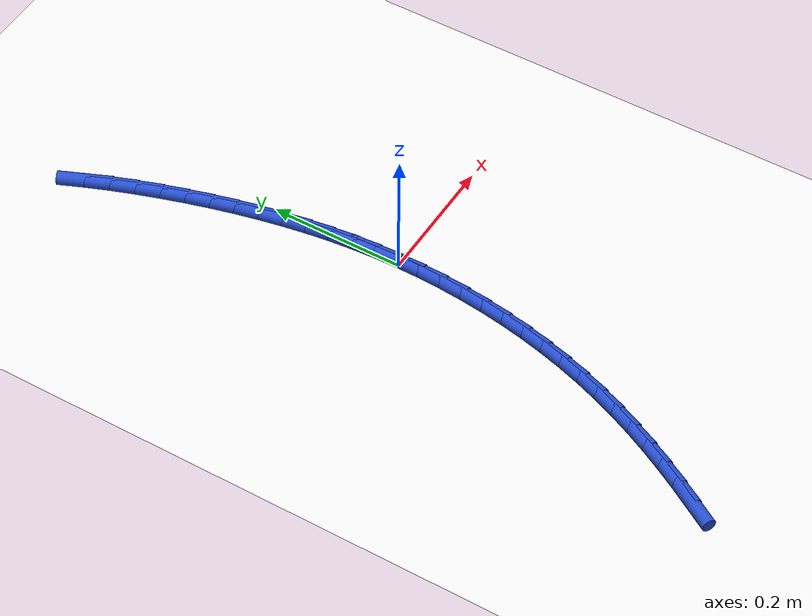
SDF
<sdf version="1.6">
 <world name="default">
  <model name="ground_plane">
   <static>1</static>
   <link name="link">
    <collision name="collision">
     <geometry><plane><normal>0 0 1</normal><size>100 100</size></plane></geometry>
     <surface><friction><ode><mu>100</mu><mu2>50</mu2></ode></friction></surface>
    </collision>
    <visual name="visual">
     <cast_shadows>0</cast_shadows>
     <geometry><plane><normal>0 0 1</normal><size>100 100</size></plane></geometry>
     <material>
      <script><uri>file://media/materials/scripts/gazebo.material</uri><name>Gazebo/WhiteGlow</name></script>
     </material>
    </visual>
   </link>
  </model>
  <model name="line">
   <link name="link_0">
    <pose>1.214306433183765e-17 3.469446951953614e-17 0.01 0 1.57 -1.5426312727990603</pose>
    <collision name="collision">
     <geometry><cylinder><radius>0.01</radius><length>0.08</length></cylinder></geometry>
    </collision>
    <visual name="visual">
     <material>
      <script><name>Gazebo/Blue</name><uri>file://media/materials/scripts/gazebo.material</uri></script>
     </material>
     <geometry><cylinder><radius>0.01</radius><length>0.08</length></cylinder></geometry>
    </visual>
   </link>
   <link name="link_1">
    <pose>-0.0010002982026850779 0.035506187439576106 0.01 0 1.57 -1.5058562536619777</pose>
    <collision name="collision">
     <geometry><cylinder><radius>0.01</radius><length>0.08</length></cylinder></geometry>
    </collision>
    <visual name="visual">
     <material>
      <script><name>Gazebo/Blue</name><uri>file://media/materials/scripts/gazebo.material</uri></script>
     </material>
     <geometry><cylinder><radius>0.01</radius><length>0.08</length></cylinder></geometry>
    </visual>
   </link>
   <link name="link_2">
    <pose>-0.003300335182568896 0.07087422309153318 0.01 0 1.57 -1.4704358552611085</pose>
    <collision name="collision">
     <geometry><cylinder><radius>0.01</radius><length>0.08</length></cylinder></geometry>
    </collision>
    <visual name="visual">
     <material>
      <script><name>Gazebo/Blue</name><uri>file://media/materials/scripts/gazebo.material</uri></script>
     </material>
     <geometry><cylinder><radius>0.01</radius><length>0.08</length></cylinder></geometry>
    </visual>
   </link>
   <link name="link_3">
    <pose>-0.0068496619563330734 0.10612119006853507 0.01 0 1.57 -1.4364995870201744</pose>
    <collision name="collision">
     <geometry><cylinder><radius>0.01</radius><length>0.08</length></cylinder></geometry>
    </collision>
    <visual name="visual">
     <material>
      <script><name>Gazebo/Blue</name><uri>file://media/materials/scripts/gazebo.material</uri></script>
     </material>
     <geometry><cylinder><radius>0.01</radius><length>0.08</length></cylinder></geometry>
    </visual>
   </link>
   <link name="link_4">
    <pose>-0.01159782954065923 0.1412641714832455 0.01 0 1.57 -1.4041526083188234</pose>
    <collision name="collision">
     <geometry><cylinder><radius>0.01</radius><length>0.08</length></cylinder></geometry>
    </collision>
    <visual name="visual">
     <material>
      <script><name>Gazebo/Blue</name><uri>file://media/materials/scripts/gazebo.material</uri></script>
     </material>
     <geometry><cylinder><radius>0.01</radius><length>0.08</length></cylinder></geometry>
    </visual>
   </link>
   <link name="link_5">
    <pose>-0.017494388952228983 0.1763202504483281 0.01 0 1.57 -1.3734763381426565</pose>
    <collision name="collision">
     <geometry><cylinder><radius>0.01</radius><length>0.08</length></cylinder></geometry>
    </collision>
    <visual name="visual">
     <material>
      <script><name>Gazebo/Blue</name><uri>file://media/materials/scripts/gazebo.material</uri></script>
     </material>
     <geometry><cylinder><radius>0.01</radius><length>0.08</length></cylinder></geometry>
    </visual>
   </link>
   <link name="link_6">
    <pose>-0.024488891207723962 0.21130651007644682 0.01 0 1.57 -1.3445298664040357</pose>
    <collision name="collision">
     <geometry><cylinder><radius>0.01</radius><length>0.08</length></cylinder></geometry>
    </collision>
    <visual name="visual">
     <material>
      <script><name>Gazebo/Blue</name><uri>file://media/materials/scripts/gazebo.material</uri></script>
     </material>
     <geometry><cylinder><radius>0.01</radius><length>0.08</length></cylinder></geometry>
    </visual>
   </link>
   <link name="link_7">
    <pose>-0.032530887323825766 0.24624003348026519 0.01 0 1.57 -1.317351948800071</pose>
    <collision name="collision">
     <geometry><cylinder><radius>0.01</radius><length>0.08</length></cylinder></geometry>
    </collision>
    <visual name="visual">
     <material>
      <script><name>Gazebo/Blue</name><uri>file://media/materials/scripts/gazebo.material</uri></script>
     </material>
     <geometry><cylinder><radius>0.01</radius><length>0.08</length></cylinder></geometry>
    </visual>
   </link>
   <link name="link_8">
    <pose>-0.041569928317216044 0.2811379037724471 0.01 0 1.57 -1.2919633715170835</pose>
    <collision name="collision">
     <geometry><cylinder><radius>0.01</radius><length>0.08</length></cylinder></geometry>
    </collision>
    <visual name="visual">
     <material>
      <script><name>Gazebo/Blue</name><uri>file://media/materials/scripts/gazebo.material</uri></script>
     </material>
     <geometry><cylinder><radius>0.01</radius><length>0.08</length></cylinder></geometry>
    </visual>
   </link>
   <link name="link_9">
    <pose>-0.05155556520457641 0.31601720406565614 0.01 0 1.57 -1.2681315267713331</pose>
    <collision name="collision">
     <geometry><cylinder><radius>0.01</radius><length>0.08</length></cylinder></geometry>
    </collision>
    <visual name="visual">
     <material>
      <script><name>Gazebo/Blue</name><uri>file://media/materials/scripts/gazebo.material</uri></script>
     </material>
     <geometry><cylinder><radius>0.01</radius><length>0.08</length></cylinder></geometry>
    </visual>
   </link>
   <link name="link_10">
    <pose>-0.062443418650945125 0.35088528592256063 0.01 0 1.57 -1.2437487347819112</pose>
    <collision name="collision">
     <geometry><cylinder><radius>0.01</radius><length>0.08</length></cylinder></geometry>
    </collision>
    <visual name="visual">
     <material>
      <script><name>Gazebo/Blue</name><uri>file://media/materials/scripts/gazebo.material</uri></script>
     </material>
     <geometry><cylinder><radius>0.01</radius><length>0.08</length></cylinder></geometry>
    </visual>
   </link>
   <link name="link_11">
    <pose>-0.0742417528872694 0.38566509675859034 0.01 0 1.57 -1.2176183428503358</pose>
    <collision name="collision">
     <geometry><cylinder><radius>0.01</radius><length>0.08</length></cylinder></geometry>
    </collision>
    <visual name="visual">
     <material>
      <script><name>Gazebo/Blue</name><uri>file://media/materials/scripts/gazebo.material</uri></script>
     </material>
     <geometry><cylinder><radius>0.01</radius><length>0.08</length></cylinder></geometry>
    </visual>
   </link>
   <link name="link_12">
    <pose>-0.08698585982305533 0.42023625014350546 0.01 0 1.57 -1.1895678462801231</pose>
    <collision name="collision">
     <geometry><cylinder><radius>0.01</radius><length>0.08</length></cylinder></geometry>
    </collision>
    <visual name="visual">
     <material>
      <script><name>Gazebo/Blue</name><uri>file://media/materials/scripts/gazebo.material</uri></script>
     </material>
     <geometry><cylinder><radius>0.01</radius><length>0.08</length></cylinder></geometry>
    </visual>
   </link>
   <link name="link_13">
    <pose>-0.10071125241512836 0.45447800523888404 0.01 0 1.57 -1.1594206614155342</pose>
    <collision name="collision">
     <geometry><cylinder><radius>0.01</radius><length>0.08</length></cylinder></geometry>
    </collision>
    <visual name="visual">
     <material>
      <script><name>Gazebo/Blue</name><uri>file://media/materials/scripts/gazebo.material</uri></script>
     </material>
     <geometry><cylinder><radius>0.01</radius><length>0.08</length></cylinder></geometry>
    </visual>
   </link>
   <link name="link_174">
    <pose>-0.16105995017884112 -0.5389612328574698 0.01 0 1.57 1.022859964173471</pose>
    <collision name="collision">
     <geometry><cylinder><radius>0.01</radius><length>0.08</length></cylinder></geometry>
    </collision>
    <visual name="visual">
     <material>
      <script><name>Gazebo/Blue</name><uri>file://media/materials/scripts/gazebo.material</uri></script>
     </material>
     <geometry><cylinder><radius>0.01</radius><length>0.08</length></cylinder></geometry>
    </visual>
   </link>
   <link name="link_175">
    <pose>-0.14240651623558007 -0.508395334188964 0.01 0 1.57 1.0480958720066804</pose>
    <collision name="collision">
     <geometry><cylinder><radius>0.01</radius><length>0.08</length></cylinder></geometry>
    </collision>
    <visual name="visual">
     <material>
      <script><name>Gazebo/Blue</name><uri>file://media/materials/scripts/gazebo.material</uri></script>
     </material>
     <geometry><cylinder><radius>0.01</radius><length>0.08</length></cylinder></geometry>
    </visual>
   </link>
   <link name="link_176">
    <pose>-0.12460725977336541 -0.4775020602029075 0.01 0 1.57 1.076201812825943</pose>
    <collision name="collision">
     <geometry><cylinder><radius>0.01</radius><length>0.08</length></cylinder></geometry>
    </collision>
    <visual name="visual">
     <material>
      <script><name>Gazebo/Blue</name><uri>file://media/materials/scripts/gazebo.material</uri></script>
     </material>
     <geometry><cylinder><radius>0.01</radius><length>0.08</length></cylinder></geometry>
    </visual>
   </link>
   <link name="link_177">
    <pose>-0.10774255809465744 -0.44623084651714734 0.01 0 1.57 1.1071509712190226</pose>
    <collision name="collision">
     <geometry><cylinder><radius>0.01</radius><length>0.08</length></cylinder></geometry>
    </collision>
    <visual name="visual">
     <material>
      <script><name>Gazebo/Blue</name><uri>file://media/materials/scripts/gazebo.material</uri></script>
     </material>
     <geometry><cylinder><radius>0.01</radius><length>0.08</length></cylinder></geometry>
    </visual>
   </link>
   <link name="link_178">
    <pose>-0.09189278850191643 -0.41453112874953063 0.01 0 1.57 1.140883825285352</pose>
    <collision name="collision">
     <geometry><cylinder><radius>0.01</radius><length>0.08</length></cylinder></geometry>
    </collision>
    <visual name="visual">
     <material>
      <script><name>Gazebo/Blue</name><uri>file://media/materials/scripts/gazebo.material</uri></script>
     </material>
     <geometry><cylinder><radius>0.01</radius><length>0.08</length></cylinder></geometry>
    </visual>
   </link>
   <link name="link_179">
    <pose>-0.07713832829760284 -0.3823523425179049 0.01 0 1.57 1.177301513587814</pose>
    <collision name="collision">
     <geometry><cylinder><radius>0.01</radius><length>0.08</length></cylinder></geometry>
    </collision>
    <visual name="visual">
     <material>
      <script><name>Gazebo/Blue</name><uri>file://media/materials/scripts/gazebo.material</uri></script>
     </material>
     <geometry><cylinder><radius>0.01</radius><length>0.08</length></cylinder></geometry>
    </visual>
   </link>
   <link name="link_180">
    <pose>-0.06355955478417633 -0.34964392344011586 0.01 0 1.57 1.21625136594004</pose>
    <collision name="collision">
     <geometry><cylinder><radius>0.01</radius><length>0.08</length></cylinder></geometry>
    </collision>
    <visual name="visual">
     <material>
      <script><name>Gazebo/Blue</name><uri>file://media/materials/scripts/gazebo.material</uri></script>
     </material>
     <geometry><cylinder><radius>0.01</radius><length>0.08</length></cylinder></geometry>
    </visual>
   </link>
   <link name="link_181">
    <pose>-0.05123664796258273 -0.3163556521863905 0.01 0 1.57 1.2565314624332777</pose>
    <collision name="collision">
     <geometry><cylinder><radius>0.01</radius><length>0.08</length></cylinder></geometry>
    </collision>
    <visual name="visual">
     <material>
      <script><name>Gazebo/Blue</name><uri>file://media/materials/scripts/gazebo.material</uri></script>
     </material>
     <geometry><cylinder><radius>0.01</radius><length>0.08</length></cylinder></geometry>
    </visual>
   </link>
   <link name="link_182">
    <pose>-0.04022566357867719 -0.2824794993292117 0.01 0 1.57 1.2961482474052246</pose>
    <collision name="collision">
     <geometry><cylinder><radius>0.01</radius><length>0.08</length></cylinder></geometry>
    </collision>
    <visual name="visual">
     <material>
      <script><name>Gazebo/Blue</name><uri>file://media/materials/scripts/gazebo.material</uri></script>
     </material>
     <geometry><cylinder><radius>0.01</radius><length>0.08</length></cylinder></geometry>
    </visual>
   </link>
   <link name="link_183">
    <pose>-0.03053566899897313 -0.24808961145537597 0.01 0 1.57 1.3350190579416783</pose>
    <collision name="collision">
     <geometry><cylinder><radius>0.01</radius><length>0.08</length></cylinder></geometry>
    </collision>
    <visual name="visual">
     <material>
      <script><name>Gazebo/Blue</name><uri>file://media/materials/scripts/gazebo.material</uri></script>
     </material>
     <geometry><cylinder><radius>0.01</radius><length>0.08</length></cylinder></geometry>
    </visual>
   </link>
   <link name="link_184">
    <pose>-0.022170313968009978 -0.2132696098045009 0.01 0 1.57 1.3732977727536804</pose>
    <collision name="collision">
     <geometry><cylinder><radius>0.01</radius><length>0.08</length></cylinder></geometry>
    </collision>
    <visual name="visual">
     <material>
      <script><name>Gazebo/Blue</name><uri>file://media/materials/scripts/gazebo.material</uri></script>
     </material>
     <geometry><cylinder><radius>0.01</radius><length>0.08</length></cylinder></geometry>
    </visual>
   </link>
   <link name="link_185">
    <pose>-0.015133248230327193 -0.17810311561620373 0.01 0 1.57 1.4111386975486577</pose>
    <collision name="collision">
     <geometry><cylinder><radius>0.01</radius><length>0.08</length></cylinder></geometry>
    </collision>
    <visual name="visual">
     <material>
      <script><name>Gazebo/Blue</name><uri>file://media/materials/scripts/gazebo.material</uri></script>
     </material>
     <geometry><cylinder><radius>0.01</radius><length>0.08</length></cylinder></geometry>
    </visual>
   </link>
   <link name="link_186">
    <pose>-0.009428121530464363 -0.14267375013010286 0.01 0 1.57 1.4486966031868445</pose>
    <collision name="collision">
     <geometry><cylinder><radius>0.01</radius><length>0.08</length></cylinder></geometry>
    </collision>
    <visual name="visual">
     <material>
      <script><name>Gazebo/Blue</name><uri>file://media/materials/scripts/gazebo.material</uri></script>
     </material>
     <geometry><cylinder><radius>0.01</radius><length>0.08</length></cylinder></geometry>
    </visual>
   </link>
   <link name="link_187">
    <pose>-0.005058583612960686 -0.10706513458581414 0.01 0 1.57 1.4861269917986568</pose>
    <collision name="collision">
     <geometry><cylinder><radius>0.01</radius><length>0.08</length></cylinder></geometry>
    </collision>
    <visual name="visual">
     <material>
      <script><name>Gazebo/Blue</name><uri>file://media/materials/scripts/gazebo.material</uri></script>
     </material>
     <geometry><cylinder><radius>0.01</radius><length>0.08</length></cylinder></geometry>
    </visual>
   </link>
   <link name="link_188">
    <pose>-0.0020282842223557575 -0.07136089022295578 0.01 0 1.57 1.5235865209928752</pose>
    <collision name="collision">
     <geometry><cylinder><radius>0.01</radius><length>0.08</length></cylinder></geometry>
    </collision>
    <visual name="visual">
     <material>
      <script><name>Gazebo/Blue</name><uri>file://media/materials/scripts/gazebo.material</uri></script>
     </material>
     <geometry><cylinder><radius>0.01</radius><length>0.08</length></cylinder></geometry>
    </visual>
   </link>
   <link name="link_189">
    <pose>-0.00034087310318903566 -0.03564463828114522 0.01 0 1.57 1.56123352215081</pose>
    <collision name="collision">
     <geometry><cylinder><radius>0.01</radius><length>0.08</length></cylinder></geometry>
    </collision>
    <visual name="visual">
     <material>
      <script><name>Gazebo/Blue</name><uri>file://media/materials/scripts/gazebo.material</uri></script>
     </material>
     <geometry><cylinder><radius>0.01</radius><length>0.08</length></cylinder></geometry>
    </visual>
   </link>
   <link name="link_190">
    <pose>2.3418766925686896e-17 1.3877787807814457e-16 0.01 0 1.57 -1.5423641027281958</pose>
    <collision name="collision">
     <geometry><cylinder><radius>0.01</radius><length>0.08</length></cylinder></geometry>
    </collision>
    <visual name="visual">
     <material>
      <script><name>Gazebo/Blue</name><uri>file://media/materials/scripts/gazebo.material</uri></script>
     </material>
     <geometry><cylinder><radius>0.01</radius><length>0.08</length></cylinder></geometry>
    </visual>
   </link>
   <link name="link_191">
    <pose>-0.0010093146573280452 0.035489403380862775 0.01 0 1.57 -1.5423641027281962</pose>
    <collision name="collision">
     <geometry><cylinder><radius>0.01</radius><length>0.08</length></cylinder></geometry>
    </collision>
    <visual name="visual">
     <material>
      <script><name>Gazebo/Blue</name><uri>file://media/materials/scripts/gazebo.material</uri></script>
     </material>
     <geometry><cylinder><radius>0.01</radius><length>0.08</length></cylinder></geometry>
    </visual>
   </link>
  </model>
 </world>
</sdf>
